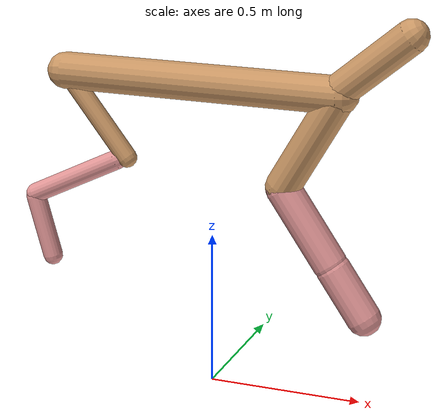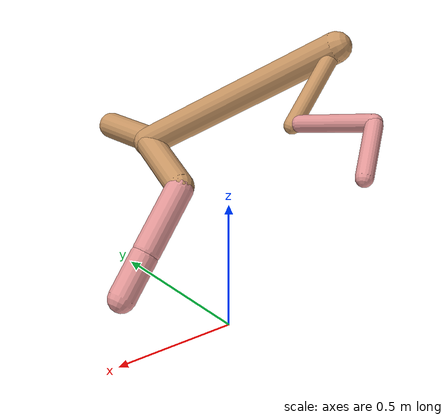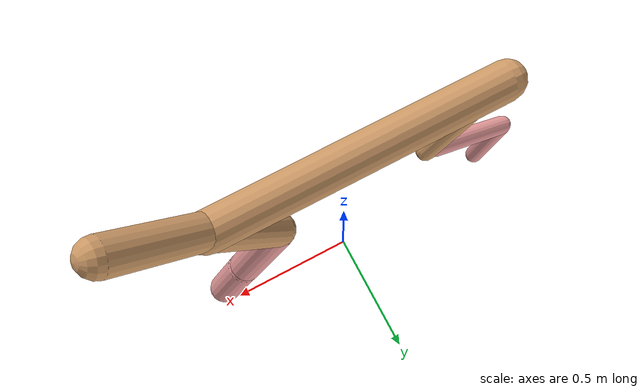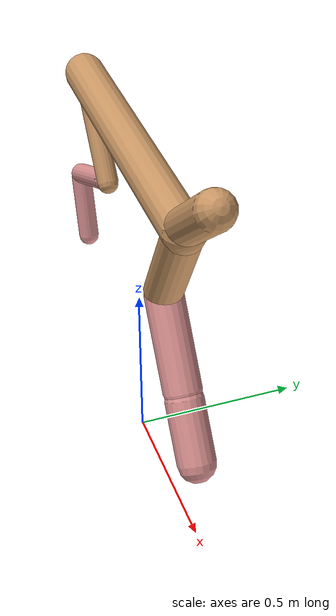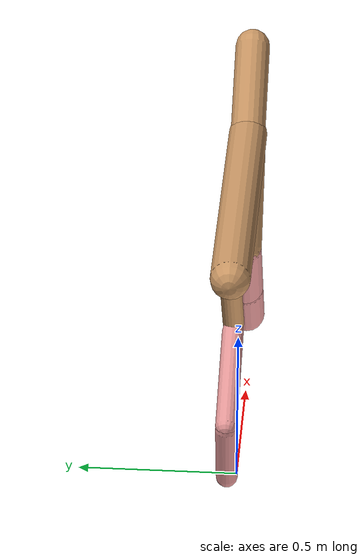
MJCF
<mujoco model="cheetah">
  <compiler angle="radian" coordinate="local" inertiafromgeom="true" settotalmass="14" />
  <default>
    <joint armature=".1" damping=".01" limited="true" solimplimit="0 .8 .03" solreflimit=".02 1" stiffness="8" />
    <geom conaffinity="0" condim="3" contype="1" friction="0.8 .1 .1" rgba="0.8 0.6 .4 1" solimp="0.0 0.8 0.01" solref="0.02 1" />
    <motor ctrllimited="true" ctrlrange="-1 1" />
  </default>
  <size nstack="300000" nuser_geom="1" />
  <option gravity="0 0 -9.81" timestep="0.01" />
  <worldbody>
    <body name="torso" pos="0.0 0.0 0.9970867702481165">
      <joint armature="0" axis="1 0 0" damping="0" limited="false" name="ignorex" pos="0 0 0" stiffness="0" type="slide" />
      <joint armature="0" axis="0 0 1" damping="0" limited="false" name="ignorez" pos="0 0 0" stiffness="0" type="slide" />
      <joint armature="0" axis="0 1 0" damping="0" limited="false" name="ignorey" pos="0 0 0" stiffness="0" type="hinge" />
      <geom fromto="-0.5 0.0 0.0 0.4119351208222823 0.0 0.0" name="torso" size="0.05944151128329876" type="capsule" />
      <geom axisangle="0 1 0 .87" name="head" pos="0.5119351208222823 0.0 0.1" size="0.05354816607308212 0.15" type="capsule" />

      <body name="bthigh" pos="-.5 0 0">
        <joint axis="0 1 0" damping="6" name="bthigh" pos="0 0 0" range="-.52 1.05" stiffness="240" type="hinge" />
        <geom axisangle="0 1 0 -3.8" name="bthigh" pos="0.10949550769033606 0.0 -0.14234415999743688" size="0.0322 0.16057379055784274" type="capsule" />
        <body name="bshin" pos="0.1789910153806721 0.0 -0.27468831999487375">
          <joint axis="0 1 0" damping="4.5" name="bshin" pos="0 0 0" range="-.785 .785" stiffness="180" type="hinge" />
          <geom axisangle="0 1 0 -2.03" name="bshin" pos="-0.15440995352607478 0.0 -0.07720497676303739" rgba="0.9 0.6 0.6 1" size="0.0322 0.16611081781845802" type="capsule" />
          <body name="bfoot" pos="-0.30881990705214957 0.0 -0.15440995352607478">
            <joint axis="0 1 0" damping="3" name="bfoot" pos="0 0 0" range="-.4 .785" stiffness="120" type="hinge" />
            <geom axisangle="0 1 0 -.27" name="bfoot" pos="0.032983095562837086 0.0 -0.10664534231983992" rgba="0.9 0.6 0.6 1" size="0.0322 0.10409611249956702" type="capsule" />
            <inertial mass="10" />
          </body>
        </body>
      </body>
      <body name="fthigh" pos="0.41193512082228234 0.0 0.0">
        <joint axis="0 1 0" damping="4.5" name="fthigh" pos="0 0 0" range="-1.5 0.8" stiffness="180" type="hinge" />
        <geom axisangle="0 1 0 .52" name="fthigh" pos="-0.0908255484038453 0.0 -0.15570094012087762" size="0.05580342122465263 0.17433110924999948" type="capsule" />
        <body name="fshin" pos="-0.1816510968076906 0.0 -0.31140188024175525">
          <joint axis="0 1 0" damping="3" name="fshin" pos="0 0 0" range="-1.2 1.1" stiffness="120" type="hinge" />
          <geom axisangle="0 1 0 -.6" name="fshin" pos="0.08428640036731648 0.0 -0.1167042466624382" rgba="0.9 0.6 0.6 1" size="0.05580342122465263 0.13894058331202966" type="capsule" />
          <body name="ffoot" pos="0.16857280073463296 0.0 -0.2334084933248764">
            <joint axis="0 1 0" damping="1.5" name="ffoot" pos="0 0 0" range="-3.1 -0.3" stiffness="60" type="hinge" />
            <geom axisangle="0 1 0 -.6" name="ffoot" pos="0.05676321636018146 0.0 -0.08829833656028228" rgba="0.9 0.6 0.6 1" size="0.05580342122465263 0.09175321539473658" type="capsule" />
            <inertial mass="10" />
          </body>
        </body>
      </body>
    </body>
  </worldbody>
  <actuator>
    <motor gear="120" joint="bthigh" name="bthigh" />
    <motor gear="90" joint="bshin" name="bshin" />
    <motor gear="60" joint="bfoot" name="bfoot" />
    <motor gear="120" joint="fthigh" name="fthigh" />
    <motor gear="60" joint="fshin" name="fshin" />
    <motor gear="30" joint="ffoot" name="ffoot" />
  </actuator>
</mujoco>
